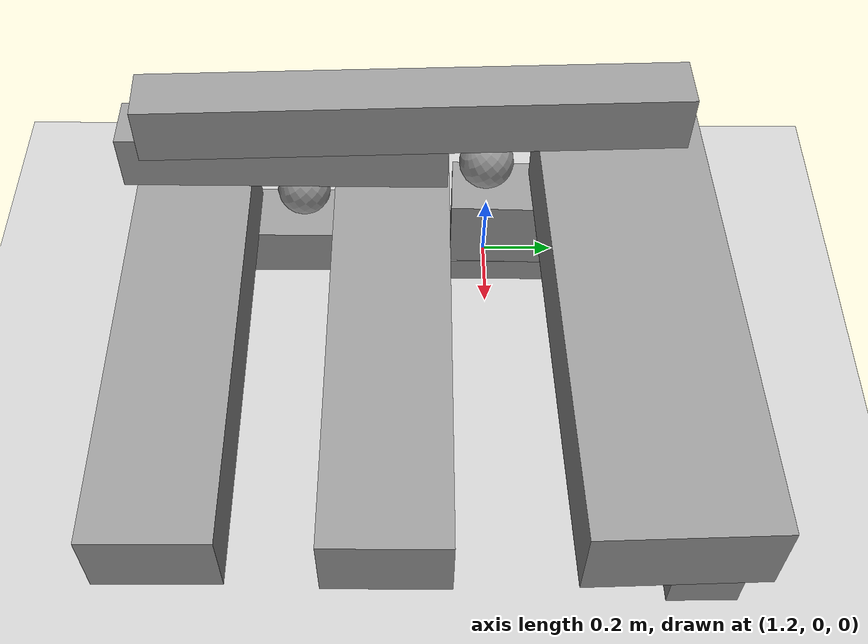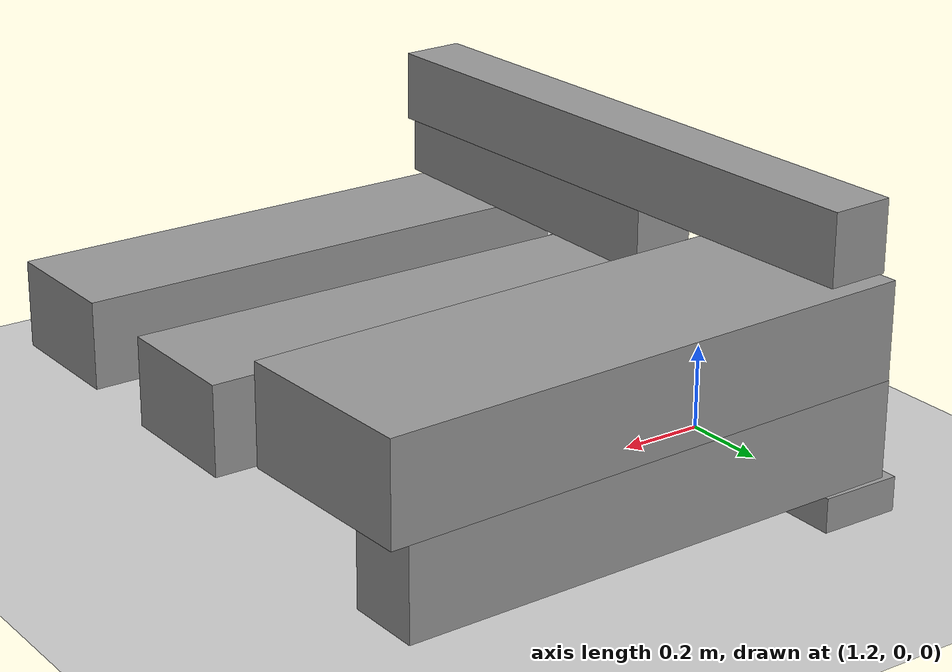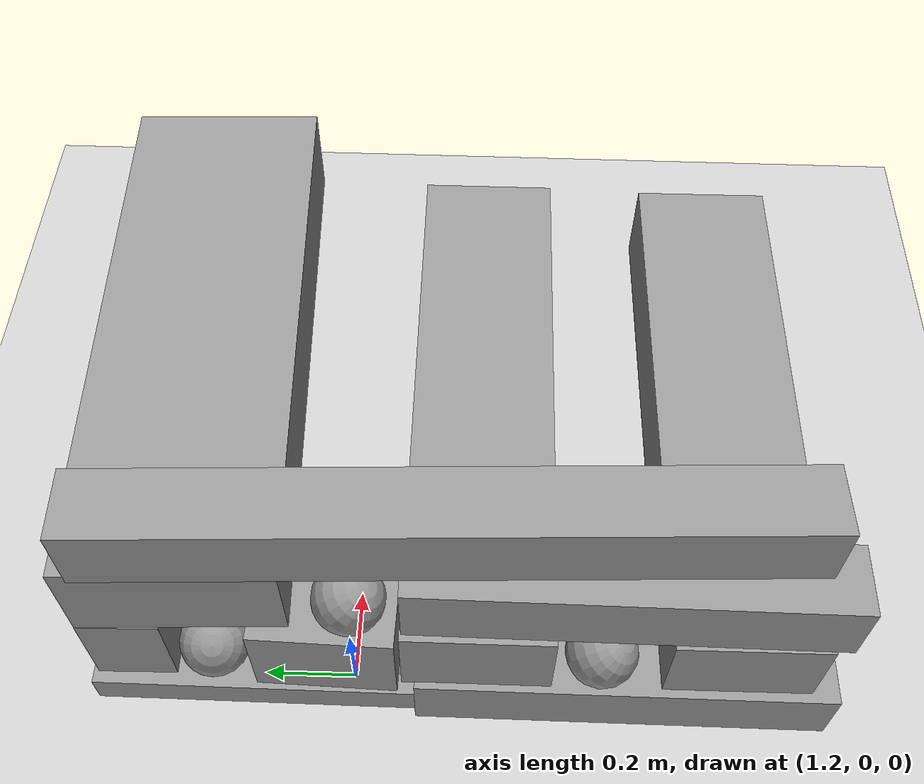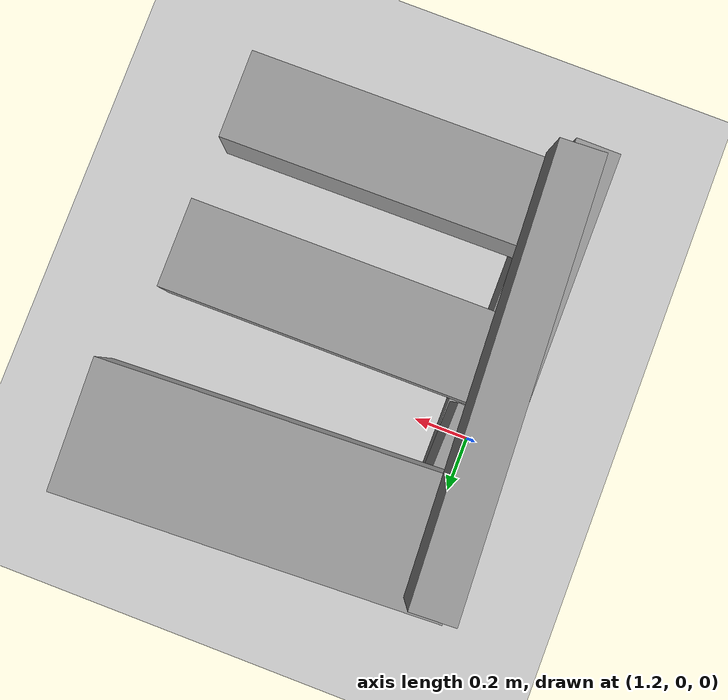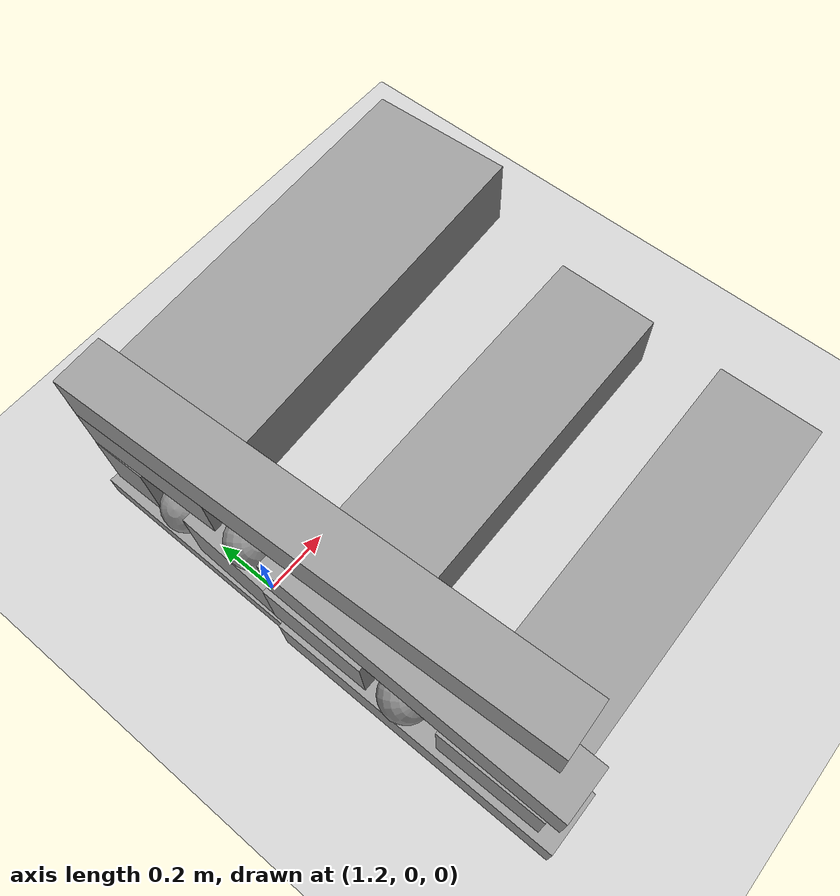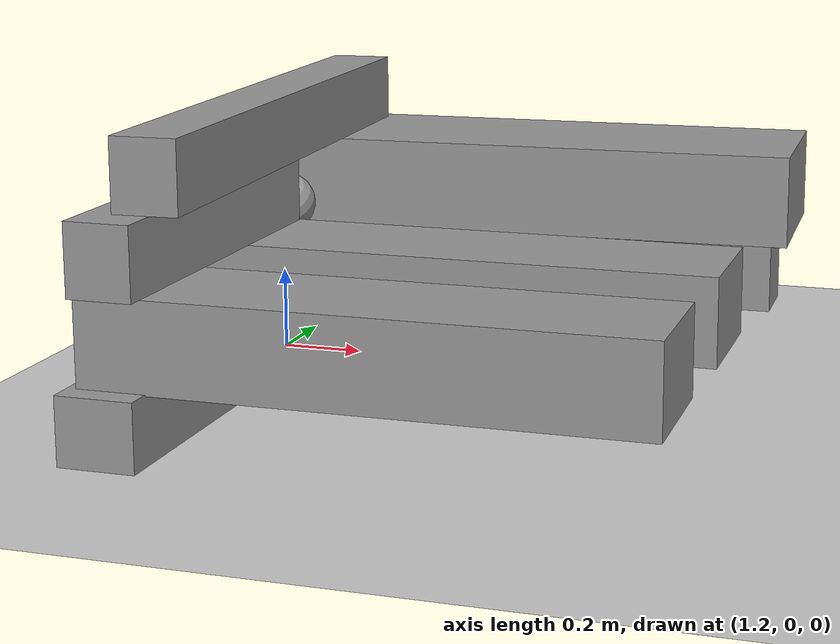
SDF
<sdf version="1.7">
 <world name="default">
  <model name="red_unit_sphere">
   <link name="link">
    <inertial>
     <mass>1</mass>
     <inertia><ixx>0.1</ixx><ixy>0</ixy><ixz>0</ixz><iyy>0.1</iyy><iyz>0</iyz><izz>0.1</izz></inertia>
    </inertial>
    <visual name="visual">
     <geometry><sphere><radius>0.0759064</radius></sphere></geometry>
     <material>
      <script><name>Gazebo/Grey</name><uri>file://media/materials/scripts/gazebo.material</uri></script>
      <shader type="pixel"><normal_map>__default__</normal_map></shader>
      <emissive>1 0 0 0</emissive>
      <ambient>0.3 0.3 0.3 1</ambient>
      <diffuse>0.7 0.7 0.7 1</diffuse>
      <specular>0.01 0.01 0.01 1</specular>
     </material>
    </visual>
    <collision name="collision">
     <geometry><sphere><radius>0.075906</radius></sphere></geometry>
     <surface>
      <friction>
       <ode><mu>1</mu><mu2>1</mu2><fdir1>0 0 0</fdir1><slip1>0</slip1><slip2>0</slip2></ode>
       <torsional>
        <coefficient>1</coefficient>
        <patch_radius>0</patch_radius>
        <surface_radius>0</surface_radius>
        <use_patch_radius>1</use_patch_radius>
        <ode><slip>0</slip></ode>
       </torsional>
      </friction>
      <bounce><restitution_coefficient>0</restitution_coefficient><threshold>1e+06</threshold></bounce>
      <contact>
       <collide_without_contact>0</collide_without_contact>
       <collide_without_contact_bitmask>1</collide_without_contact_bitmask>
       <collide_bitmask>1</collide_bitmask>
       <ode>
        <soft_cfm>0</soft_cfm>
        <soft_erp>0.2</soft_erp>
        <kp>1e+13</kp>
        <kd>1</kd>
        <max_vel>0.01</max_vel>
        <min_depth>0</min_depth>
       </ode>
       <bullet>
        <split_impulse>1</split_impulse>
        <split_impulse_penetration_threshold>-0.01</split_impulse_penetration_threshold>
        <soft_cfm>0</soft_cfm>
        <soft_erp>0.2</soft_erp>
        <kp>1e+13</kp>
        <kd>1</kd>
       </bullet>
      </contact>
     </surface>
    </collision>
   </link>
   <static>0</static>
   <pose>1.20329 0.29263 0.154972 -0.512755 -0.271837 1.36024</pose>
  </model>
  <model name="unit_box">
   <pose>1.22538 0.2102 0.039517 0 3.1e-05 -0.002056</pose>
   <link name="link">
    <inertial>
     <mass>1</mass>
     <inertia>
      <ixx>0.166667</ixx>
      <ixy>0</ixy>
      <ixz>0</ixz>
      <iyy>0.166667</iyy>
      <iyz>0</iyz>
      <izz>0.166667</izz>
     </inertia>
    </inertial>
    <collision name="collision">
     <geometry><box><size>0.189625 0.705305 0.0790958</size></box></geometry>
    </collision>
    <visual name="visual">
     <geometry><box><size>0.189625 0.705305 0.0790958</size></box></geometry>
     <material>
      <script><name>Gazebo/Grey</name><uri>file://media/materials/scripts/gazebo.material</uri></script>
     </material>
    </visual>
   </link>
   <static>1</static>
  </model>
  <model name="unit_box_0">
   <pose>1.76537 0.477182 0.190026 -3.5e-05 2e-05 0.019349</pose>
   <link name="link">
    <inertial>
     <mass>1</mass>
     <inertia>
      <ixx>0.166667</ixx>
      <ixy>0</ixy>
      <ixz>0</ixz>
      <iyy>0.166667</iyy>
      <iyz>0</iyz>
      <izz>0.166667</izz>
     </inertia>
    </inertial>
    <collision name="collision"><geometry><box><size>1.21306 0.171598 0.22199</size></box></geometry></collision>
    <visual name="visual">
     <geometry><box><size>1.21306 0.171598 0.22199</size></box></geometry>
     <material>
      <script><name>Gazebo/Grey</name><uri>file://media/materials/scripts/gazebo.material</uri></script>
     </material>
    </visual>
   </link>
   <static>1</static>
  </model>
  <model name="unit_box_0_clone">
   <pose>1.22995 0.050288 0.190054 -5.3e-05 1.2e-05 -0.026056</pose>
   <link name="link">
    <inertial>
     <mass>1</mass>
     <inertia>
      <ixx>0.166667</ixx>
      <ixy>0</ixy>
      <ixz>0</ixz>
      <iyy>0.166667</iyy>
      <iyz>0</iyz>
      <izz>0.166667</izz>
     </inertia>
    </inertial>
    <collision name="collision"><geometry><box><size>0.178297 0.303579 0.22199</size></box></geometry></collision>
    <visual name="visual">
     <geometry><box><size>0.178297 0.303579 0.22199</size></box></geometry>
     <material>
      <script><name>Gazebo/Grey</name><uri>file://media/materials/scripts/gazebo.material</uri></script>
     </material>
    </visual>
   </link>
   <static>1</static>
  </model>
  <model name="unit_box_0_clone_0">
   <pose>1.80188 0.359714 0.411919 3.14151 6e-05 0.041497</pose>
   <link name="link">
    <inertial>
     <mass>1</mass>
     <inertia>
      <ixx>0.166667</ixx>
      <ixy>0</ixy>
      <ixz>0</ixz>
      <iyy>0.166667</iyy>
      <iyz>0</iyz>
      <izz>0.166667</izz>
     </inertia>
    </inertial>
    <collision name="collision"><geometry><box><size>1.2707 0.435237 0.22199</size></box></geometry></collision>
    <visual name="visual">
     <geometry><box><size>1.2707 0.435237 0.22199</size></box></geometry>
     <material>
      <script><name>Gazebo/Grey</name><uri>file://media/materials/scripts/gazebo.material</uri></script>
     </material>
    </visual>
   </link>
   <static>1</static>
  </model>
  <model name="ground_plane">
   <static>1</static>
   <link name="link">
    <collision name="collision">
     <geometry><plane><normal>0 0 1</normal><size>100 100</size></plane></geometry>
     <surface>
      <contact><collide_bitmask>65535</collide_bitmask></contact>
      <friction><ode><mu>100</mu><mu2>50</mu2></ode></friction>
     </surface>
    </collision>
    <visual name="visual">
     <cast_shadows>0</cast_shadows>
     <geometry><plane><normal>0 0 1</normal><size>100 100</size></plane></geometry>
     <material>
      <script><uri>file://media/materials/scripts/gazebo.material</uri><name>Gazebo/Grey</name></script>
     </material>
    </visual>
   </link>
  </model>
  <light name="light" type="directional">
   <pose>0 4 2.5 -1 0 0</pose>
   <diffuse>1 1 1 1</diffuse>
   <specular>0.2 0.2 0.2 1</specular>
   <attenuation>
    <range>20</range>
    <constant>0.9</constant>
    <linear>0.01</linear>
    <quadratic>0.001</quadratic>
   </attenuation>
   <direction>0 0 -1</direction>
   <spot><inner_angle>0</inner_angle><outer_angle>0</outer_angle><falloff>0</falloff></spot>
  </light>
  <physics type="ode">
   <ode>
    <solver>
     <type>quick</type>
     <iters>100</iters>
     <precon_iters>0</precon_iters>
     <sor>1</sor>
     <use_dynamic_moi_rescaling>0</use_dynamic_moi_rescaling>
    </solver>
    <constraints>
     <cfm>0</cfm>
     <erp>0.2</erp>
     <contact_max_correcting_vel>0</contact_max_correcting_vel>
     <contact_surface_layer>0</contact_surface_layer>
    </constraints>
   </ode>
   <real_time_factor>1</real_time_factor>
   <max_step_size>0.001</max_step_size>
   <real_time_update_rate>1000</real_time_update_rate>
  </physics>
  <gravity>0 0 -9.81</gravity>
  <magnetic_field>6e-06 2.3e-05 -4.2e-05</magnetic_field>
  <atmosphere type="adiabatic"/>
  <scene><ambient>0.4 0.4 0.4 1</ambient><background>0.7 0.7 0.7 1</background><shadows>1</shadows></scene>
  <spherical_coordinates>
   <surface_model>EARTH_WGS84</surface_model>
   <latitude_deg>0</latitude_deg>
   <longitude_deg>0</longitude_deg>
   <elevation>0</elevation>
   <heading_deg>0</heading_deg>
  </spherical_coordinates>
  <model name="red_unit_sphere_clone">
   <link name="link">
    <inertial>
     <mass>1</mass>
     <inertia><ixx>0.1</ixx><ixy>0</ixy><ixz>0</ixz><iyy>0.1</iyy><iyz>0</iyz><izz>0.1</izz></inertia>
    </inertial>
    <visual name="visual">
     <geometry><sphere><radius>0.0759065</radius></sphere></geometry>
     <material>
      <script><name>Gazebo/Grey</name><uri>file://media/materials/scripts/gazebo.material</uri></script>
      <shader type="pixel"><normal_map>__default__</normal_map></shader>
      <emissive>1 0 0 0</emissive>
      <ambient>0.3 0.3 0.3 1</ambient>
      <diffuse>0.7 0.7 0.7 1</diffuse>
      <specular>0.01 0.01 0.01 1</specular>
     </material>
    </visual>
    <collision name="collision">
     <geometry><sphere><radius>0.0759058</radius></sphere></geometry>
     <surface>
      <friction>
       <ode><mu>1</mu><mu2>1</mu2><fdir1>0 0 0</fdir1><slip1>0</slip1><slip2>0</slip2></ode>
       <torsional>
        <coefficient>1</coefficient>
        <patch_radius>0</patch_radius>
        <surface_radius>0</surface_radius>
        <use_patch_radius>1</use_patch_radius>
        <ode><slip>0</slip></ode>
       </torsional>
      </friction>
      <bounce><restitution_coefficient>0</restitution_coefficient><threshold>1e+06</threshold></bounce>
      <contact>
       <collide_without_contact>0</collide_without_contact>
       <collide_without_contact_bitmask>1</collide_without_contact_bitmask>
       <collide_bitmask>1</collide_bitmask>
       <ode>
        <soft_cfm>0</soft_cfm>
        <soft_erp>0.2</soft_erp>
        <kp>1e+13</kp>
        <kd>1</kd>
        <max_vel>0.01</max_vel>
        <min_depth>0</min_depth>
       </ode>
       <bullet>
        <split_impulse>1</split_impulse>
        <split_impulse_penetration_threshold>-0.01</split_impulse_penetration_threshold>
        <soft_cfm>0</soft_cfm>
        <soft_erp>0.2</soft_erp>
        <kp>1e+13</kp>
        <kd>1</kd>
       </bullet>
      </contact>
     </surface>
    </collision>
   </link>
   <static>0</static>
   <pose>1.20786 -0.008079 0.376958 0.056816 -0.617339 1.40549</pose>
  </model>
  <model name="unit_box_clone">
   <pose>1.20172 -0.582263 0.078015 0 3.7e-05 -0.000315</pose>
   <link name="link">
    <inertial>
     <mass>1</mass>
     <inertia>
      <ixx>0.166667</ixx>
      <ixy>0</ixy>
      <ixz>0</ixz>
      <iyy>0.166667</iyy>
      <iyz>0</iyz>
      <izz>0.166667</izz>
     </inertia>
    </inertial>
    <collision name="collision"><geometry><box><size>0.17898 0.889061 0.156066</size></box></geometry></collision>
    <visual name="visual">
     <geometry><box><size>0.17898 0.889061 0.156066</size></box></geometry>
     <material>
      <script><name>Gazebo/Grey</name><uri>file://media/materials/scripts/gazebo.material</uri></script>
     </material>
    </visual>
   </link>
   <static>1</static>
  </model>
  <model name="red_unit_sphere_clone_clone">
   <link name="link">
    <inertial>
     <mass>1</mass>
     <inertia><ixx>0.1</ixx><ixy>0</ixy><ixz>0</ixz><iyy>0.1</iyy><iyz>0</iyz><izz>0.1</izz></inertia>
    </inertial>
    <visual name="visual">
     <geometry><sphere><radius>0.0759065</radius></sphere></geometry>
     <material>
      <script><name>Gazebo/Grey</name><uri>file://media/materials/scripts/gazebo.material</uri></script>
      <shader type="pixel"><normal_map>__default__</normal_map></shader>
      <emissive>1 0 0 0</emissive>
      <ambient>0.3 0.3 0.3 1</ambient>
      <diffuse>0.7 0.7 0.7 1</diffuse>
      <specular>0.01 0.01 0.01 1</specular>
     </material>
    </visual>
    <collision name="collision">
     <geometry><sphere><radius>0.0759058</radius></sphere></geometry>
     <surface>
      <friction>
       <ode><mu>1</mu><mu2>1</mu2><fdir1>0 0 0</fdir1><slip1>0</slip1><slip2>0</slip2></ode>
       <torsional>
        <coefficient>1</coefficient>
        <patch_radius>0</patch_radius>
        <surface_radius>0</surface_radius>
        <use_patch_radius>1</use_patch_radius>
        <ode><slip>0</slip></ode>
       </torsional>
      </friction>
      <bounce><restitution_coefficient>0</restitution_coefficient><threshold>1e+06</threshold></bounce>
      <contact>
       <collide_without_contact>0</collide_without_contact>
       <collide_without_contact_bitmask>1</collide_without_contact_bitmask>
       <collide_bitmask>1</collide_bitmask>
       <ode>
        <soft_cfm>0</soft_cfm>
        <soft_erp>0.2</soft_erp>
        <kp>1e+13</kp>
        <kd>1</kd>
        <max_vel>0.01</max_vel>
        <min_depth>0</min_depth>
       </ode>
       <bullet>
        <split_impulse>1</split_impulse>
        <split_impulse_penetration_threshold>-0.01</split_impulse_penetration_threshold>
        <soft_cfm>0</soft_cfm>
        <soft_erp>0.2</soft_erp>
        <kp>1e+13</kp>
        <kd>1</kd>
       </bullet>
      </contact>
     </surface>
    </collision>
   </link>
   <static>0</static>
   <pose>1.17704 -0.52497 0.231955 0.043698 -0.633892 1.41371</pose>
  </model>
  <model name="unit_box_0_clone_0_clone">
   <pose>1.75634 -0.266375 0.255891 -3.14076 -0.000211 0.003028</pose>
   <link name="link">
    <inertial>
     <mass>1</mass>
     <inertia>
      <ixx>0.166667</ixx>
      <ixy>0</ixy>
      <ixz>0</ixz>
      <iyy>0.166667</iyy>
      <iyz>0</iyz>
      <izz>0.166667</izz>
     </inertia>
    </inertial>
    <collision name="collision"><geometry><box><size>1.25676 0.313708 0.204397</size></box></geometry></collision>
    <visual name="visual">
     <geometry><box><size>1.25676 0.313708 0.204397</size></box></geometry>
     <material>
      <script><name>Gazebo/Grey</name><uri>file://media/materials/scripts/gazebo.material</uri></script>
     </material>
    </visual>
   </link>
   <static>1</static>
  </model>
  <model name="unit_box_0_clone_0_clone_clone">
   <pose>1.75459 -0.808137 0.255428 -3.14078 -0.000215 0.007289</pose>
   <link name="link">
    <inertial>
     <mass>1</mass>
     <inertia>
      <ixx>0.166667</ixx>
      <ixy>0</ixy>
      <ixz>0</ixz>
      <iyy>0.166667</iyy>
      <iyz>0</iyz>
      <izz>0.166667</izz>
     </inertia>
    </inertial>
    <collision name="collision"><geometry><box><size>1.2453 0.313708 0.204397</size></box></geometry></collision>
    <visual name="visual">
     <geometry><box><size>1.2453 0.313708 0.204397</size></box></geometry>
     <material>
      <script><name>Gazebo/Grey</name><uri>file://media/materials/scripts/gazebo.material</uri></script>
     </material>
    </visual>
   </link>
   <static>1</static>
  </model>
  <model name="unit_box_clone_clone">
   <pose>1.21437 -0.560347 0.43972 0.000817 -0.000206 -0.004272</pose>
   <link name="link">
    <inertial>
     <mass>1</mass>
     <inertia>
      <ixx>0.166667</ixx>
      <ixy>0</ixy>
      <ixz>0</ixz>
      <iyy>0.166667</iyy>
      <iyz>0</iyz>
      <izz>0.166667</izz>
     </inertia>
    </inertial>
    <collision name="collision">
     <geometry><box><size>0.148497 0.889061 0.163918</size></box></geometry>
    </collision>
    <visual name="visual">
     <geometry><box><size>0.148497 0.889061 0.163918</size></box></geometry>
     <material>
      <script><name>Gazebo/Grey</name><uri>file://media/materials/scripts/gazebo.material</uri></script>
     </material>
    </visual>
   </link>
   <static>1</static>
  </model>
  <model name="unit_box_clone_clone_clone">
   <pose>1.25425 -0.209113 0.605967 -0.001723 0.000101 0.043319</pose>
   <link name="link">
    <inertial>
     <mass>1</mass>
     <inertia>
      <ixx>0.166667</ixx>
      <ixy>0</ixy>
      <ixz>0</ixz>
      <iyy>0.166667</iyy>
      <iyz>0</iyz>
      <izz>0.166667</izz>
     </inertia>
    </inertial>
    <collision name="collision"><geometry><box><size>0.148497 1.44036 0.163918</size></box></geometry></collision>
    <visual name="visual">
     <geometry><box><size>0.148497 1.44036 0.163918</size></box></geometry>
     <material>
      <script><name>Gazebo/Grey</name><uri>file://media/materials/scripts/gazebo.material</uri></script>
     </material>
    </visual>
   </link>
   <static>1</static>
  </model>
 </world>
</sdf>
